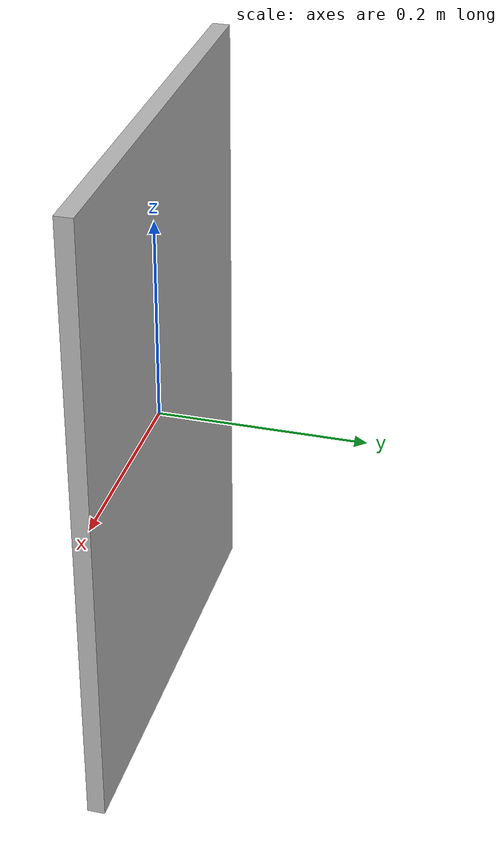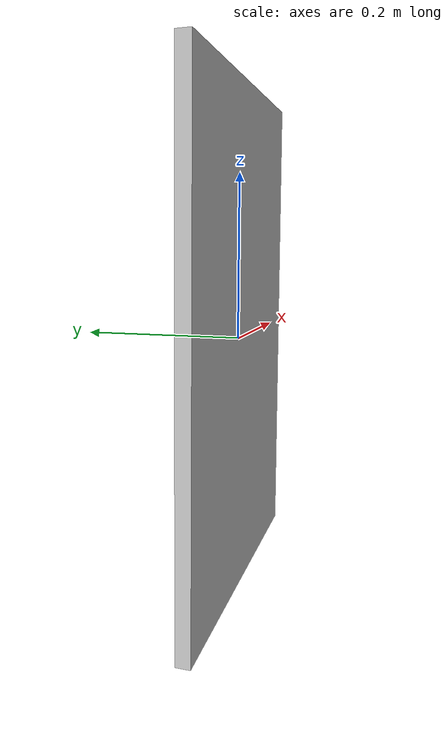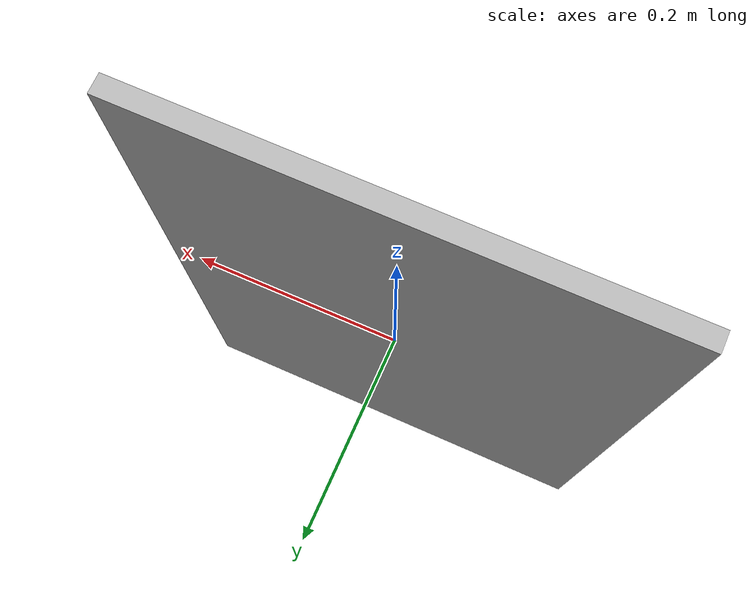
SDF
<?xml version='1.0'?>
<sdf version='1.5'>
  <model name="p10_bohdan_hawrylyshyn">
    <pose>0 0 0 0 0 0</pose>
    <static>true</static>
    <link name='model_body'>
      <collision name='collision'>
        <geometry>
          <box>
            <size>0.44 0.017 0.612</size>
          </box>
        </geometry>
      </collision>

      <visual name='visual'>
        <geometry>
          <box>
            <size>0.44 0.017 0.612</size>
          </box>
        </geometry>

        <material>
          <script>
            <uri>model://robert_gazebo/models/pictures/p10_bohdan_hawrylyshyn/materials/scripts</uri>
            <uri>model://robert_gazebo/models/pictures/p10_bohdan_hawrylyshyn/materials/textures</uri>
            <name>picture/p10_bohdan_hawrylyshyn</name>
          </script>
        </material>
      </visual>

      <inertial>
        <pose> 0 0 0 0 0 0</pose>
        <inertia>
          <ixx>0.016</ixx>
          <ixy>0</ixy>
          <ixz>0</ixz>
          <iyy>0.008</iyy>
          <iyz>0</iyz>
          <izz>0.024</izz>
        </inertia>
        <mass>0.5</mass>
      </inertial>
    </link>
  </model>
</sdf>
